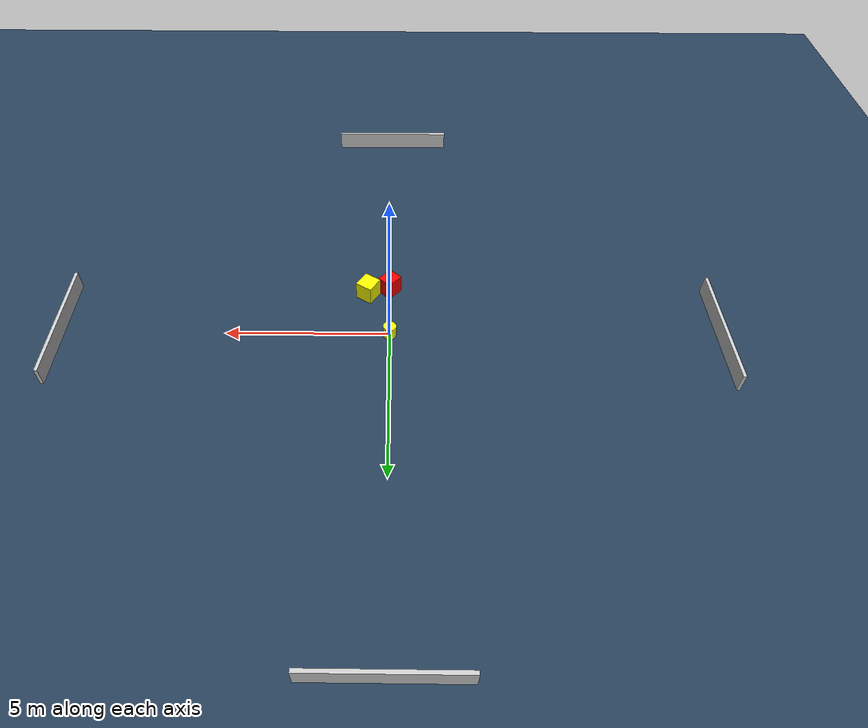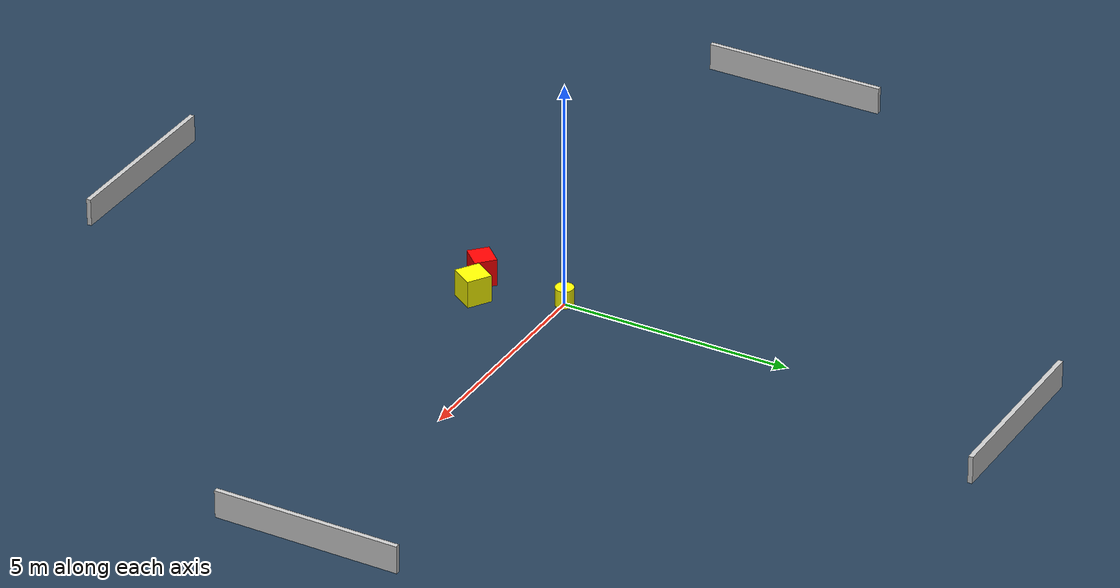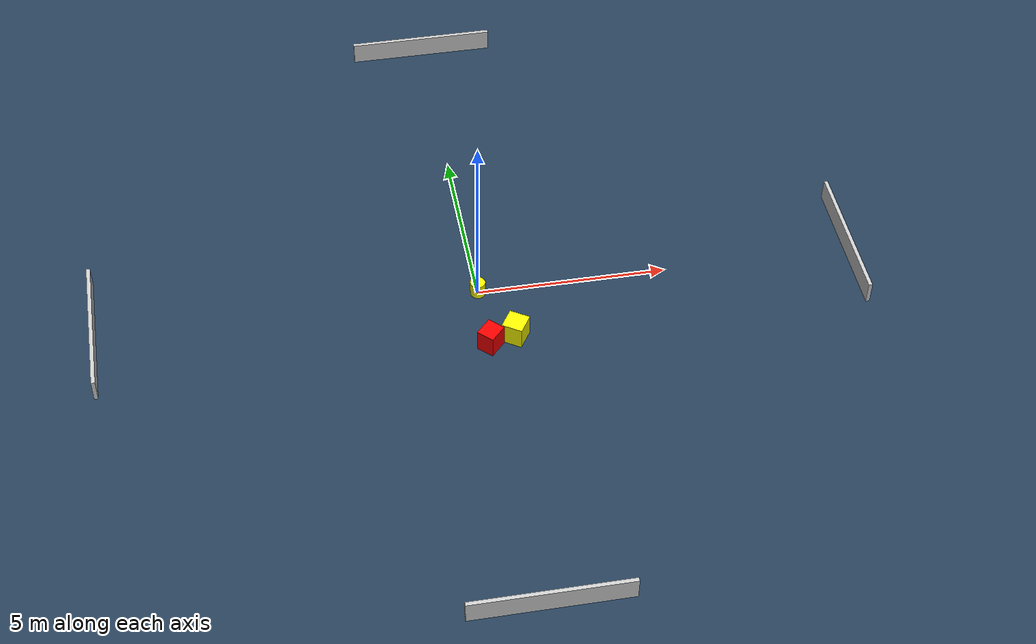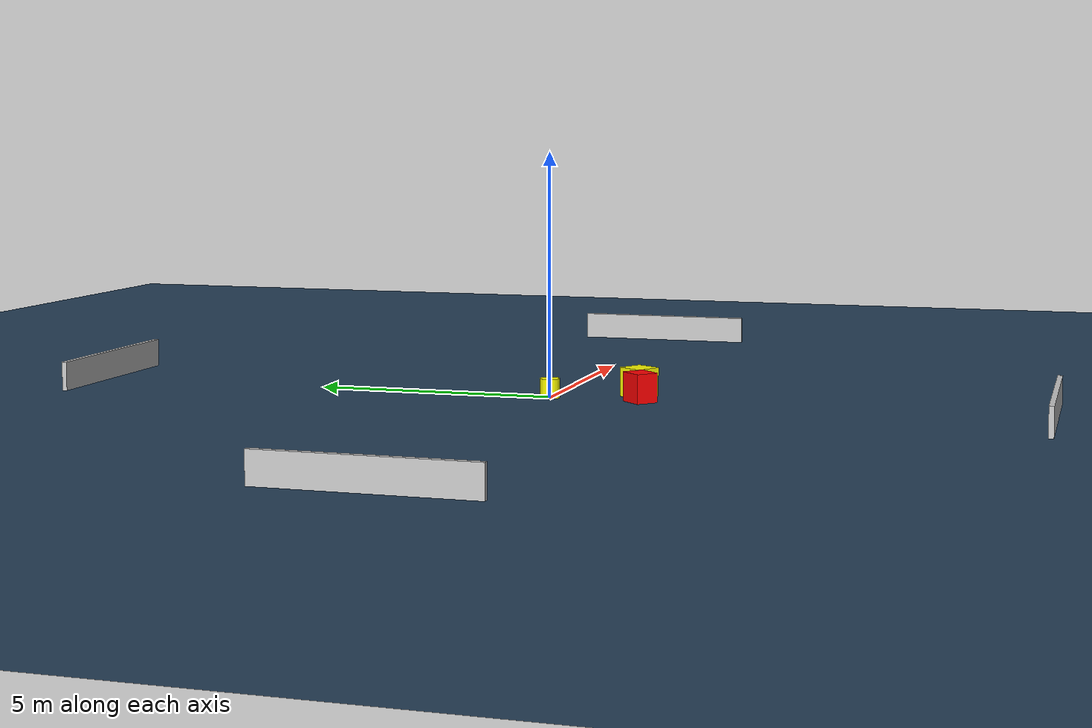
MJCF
<?xml version="1.0" ?>
<mujoco model="generated_environment">
  <option timestep="0.01" integrator="RK4" cone="elliptic"/>
  <default>
    <geom density="1"/>
  </default>
  <asset>
    <texture builtin="gradient" height="3072" name="skybox" rgb1="0.3 0.5 0.7" rgb2="0 0 0" type="skybox" width="512"/>
    <texture builtin="checker" height="300" name="groundplane" rgb1="0.2 0.3 0.4" rgb2="0.1 0.2 0.3" type="2d" width="300"/>
    <material name="groundplane" reflectance="0.2" texrepeat="5 5" texture="groundplane"/>
  </asset>
  <worldbody>
    <light dir="0 0 -1" directional="true" pos="0 0 1.5"/>
    <geom condim="3" friction="0.5 0.005 0.001" material="groundplane" name="floor" pos="0 0 0" size="0 0 0.05" type="plane"/>
    <body name="walls">
      <geom name="wall_1" condim="4" pos="-10.0 0.0 0.3" rgba="0.800000011920929 0.800000011920929 0.800000011920929 1.0" size="0.05 2.0 0.3" type="box"/>
      <geom name="wall_2" condim="4" pos="10.0 0.0 0.3" rgba="0.800000011920929 0.800000011920929 0.800000011920929 1.0" size="0.05 2.0 0.3" type="box"/>
      <geom name="wall_3" condim="4" pos="0.0 -10.0 0.3" rgba="0.800000011920929 0.800000011920929 0.800000011920929 1.0" size="2.0 0.05 0.3" type="box"/>
      <geom name="wall_4" condim="4" pos="0.0 10.0 0.3" rgba="0.800000011920929 0.800000011920929 0.800000011920929 1.0" size="2.0 0.05 0.3" type="box"/>
    </body>
    <body name="robot">
      <joint name="joint_x" type="slide" pos="0 0 0" axis="1 0 0"/>
      <joint name="joint_y" type="slide" pos="0 0 0" axis="0 1 0"/>
      <geom name="robot" type="cylinder" pos="0.0 0.0 0.2" size="0.2 0.2 0.0" mass="5.0" friction="1.0 0.005 0.0001" condim="4" rgba="1.0 1.0 0.0 1.0"/>
    </body>
    <body name="obstacle_1_movable">
      <geom name="obstacle_1_movable" condim="4" pos="0.6956244457026517 -1.7032749291439162 0.3" euler="0 0 147.23089796684553" friction="0.0 0.005 0.001" rgba="1.0 1.0 0.0 1.0" size="0.27495729376857886 0.2781037221413425 0.3" type="box" mass="0.1"/>
      <joint type="free"/>
    </body>
    <body name="obstacle_2_static">
      <geom name="obstacle_2_static" condim="4" pos="0.012347302803198028 -1.8956475402934965 0.3" euler="0 0 46.88252942769418" friction="0.0 0.005 0.001" rgba="1.0 0.0 0.0 1.0" size="0.2688756305768713 0.2393615684635847 0.3" type="box"/>
    </body>
  </worldbody>
  <actuator>
    <motor name="actuator_x" joint="joint_x" gear="1" ctrlrange="-1 1"/>
    <motor name="actuator_y" joint="joint_y" gear="1" ctrlrange="-1 1"/>
  </actuator>
</mujoco>
